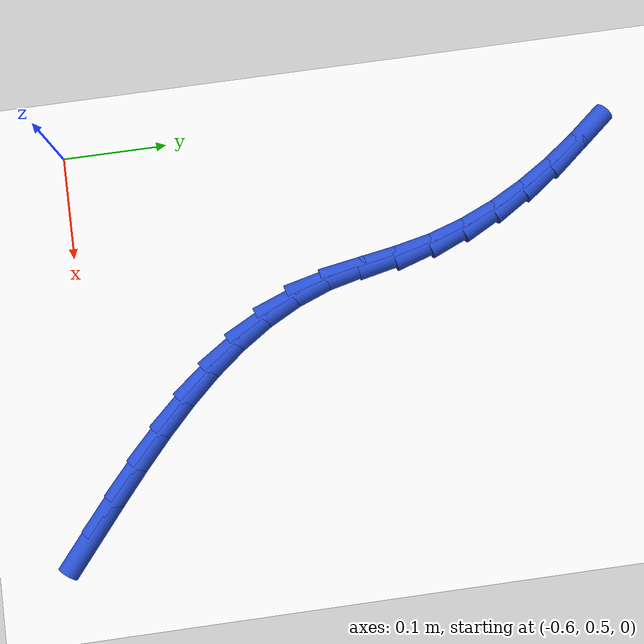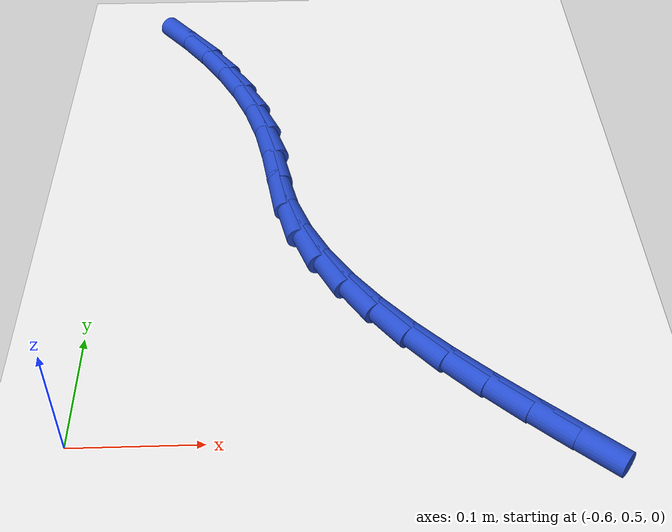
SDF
<sdf version="1.6">
 <world name="default">
  <model name="ground_plane">
   <static>1</static>
   <link name="link">
    <collision name="collision">
     <geometry><plane><normal>0 0 1</normal><size>100 100</size></plane></geometry>
     <surface><friction><ode><mu>100</mu><mu2>50</mu2></ode></friction></surface>
    </collision>
    <visual name="visual">
     <cast_shadows>0</cast_shadows>
     <geometry><plane><normal>0 0 1</normal><size>100 100</size></plane></geometry>
     <material>
      <script><uri>file://media/materials/scripts/gazebo.material</uri><name>Gazebo/WhiteGlow</name></script>
     </material>
    </visual>
   </link>
  </model>
  <model name="line">
   <link name="link_16">
    <pose>-0.2386633645860762 0.49262735201402774 0.01 0 1.57 -0.6903463337132321</pose>
    <collision name="collision">
     <geometry><cylinder><radius>0.01</radius><length>0.08</length></cylinder></geometry>
    </collision>
    <visual name="visual">
     <material>
      <script><name>Gazebo/Blue</name><uri>file://media/materials/scripts/gazebo.material</uri></script>
     </material>
     <geometry><cylinder><radius>0.01</radius><length>0.08</length></cylinder></geometry>
    </visual>
   </link>
   <link name="link_17">
    <pose>-0.2678235892629014 0.5167113216503956 0.01 0 1.57 -0.7042195649220782</pose>
    <collision name="collision">
     <geometry><cylinder><radius>0.01</radius><length>0.08</length></cylinder></geometry>
    </collision>
    <visual name="visual">
     <material>
      <script><name>Gazebo/Blue</name><uri>file://media/materials/scripts/gazebo.material</uri></script>
     </material>
     <geometry><cylinder><radius>0.01</radius><length>0.08</length></cylinder></geometry>
    </visual>
   </link>
   <link name="link_18">
    <pose>-0.29645272562324876 0.5410325541403679 0.01 0 1.57 -0.7307933267280785</pose>
    <collision name="collision">
     <geometry><cylinder><radius>0.01</radius><length>0.08</length></cylinder></geometry>
    </collision>
    <visual name="visual">
     <material>
      <script><name>Gazebo/Blue</name><uri>file://media/materials/scripts/gazebo.material</uri></script>
     </material>
     <geometry><cylinder><radius>0.01</radius><length>0.08</length></cylinder></geometry>
    </visual>
   </link>
   <link name="link_19">
    <pose>-0.32409774261645763 0.5658120885107256 0.01 0 1.57 -0.770902594090019</pose>
    <collision name="collision">
     <geometry><cylinder><radius>0.01</radius><length>0.08</length></cylinder></geometry>
    </collision>
    <visual name="visual">
     <material>
      <script><name>Gazebo/Blue</name><uri>file://media/materials/scripts/gazebo.material</uri></script>
     </material>
     <geometry><cylinder><radius>0.01</radius><length>0.08</length></cylinder></geometry>
    </visual>
   </link>
   <link name="link_20">
    <pose>-0.35030560919186793 0.5912709637882504 0.01 0 1.57 -0.8256623684526592</pose>
    <collision name="collision">
     <geometry><cylinder><radius>0.01</radius><length>0.08</length></cylinder></geometry>
    </collision>
    <visual name="visual">
     <material>
      <script><name>Gazebo/Blue</name><uri>file://media/materials/scripts/gazebo.material</uri></script>
     </material>
     <geometry><cylinder><radius>0.01</radius><length>0.08</length></cylinder></geometry>
    </visual>
   </link>
   <link name="link_21">
    <pose>-0.37462329429881946 0.6176302189997235 0.01 0 1.57 -0.8962787909941068</pose>
    <collision name="collision">
     <geometry><cylinder><radius>0.01</radius><length>0.08</length></cylinder></geometry>
    </collision>
    <visual name="visual">
     <material>
      <script><name>Gazebo/Blue</name><uri>file://media/materials/scripts/gazebo.material</uri></script>
     </material>
     <geometry><cylinder><radius>0.01</radius><length>0.08</length></cylinder></geometry>
    </visual>
   </link>
   <link name="link_22">
    <pose>-0.39659776688665194 0.6451108931719263 0.01 0 1.57 -0.98368758642964</pose>
    <collision name="collision">
     <geometry><cylinder><radius>0.01</radius><length>0.08</length></cylinder></geometry>
    </collision>
    <visual name="visual">
     <material>
      <script><name>Gazebo/Blue</name><uri>file://media/materials/scripts/gazebo.material</uri></script>
     </material>
     <geometry><cylinder><radius>0.01</radius><length>0.08</length></cylinder></geometry>
    </visual>
   </link>
   <link name="link_23">
    <pose>-0.41577599590470515 0.6739340253316402 0.01 0 1.57 -1.0879693595745252</pose>
    <collision name="collision">
     <geometry><cylinder><radius>0.01</radius><length>0.08</length></cylinder></geometry>
    </collision>
    <visual name="visual">
     <material>
      <script><name>Gazebo/Blue</name><uri>file://media/materials/scripts/gazebo.material</uri></script>
     </material>
     <geometry><cylinder><radius>0.01</radius><length>0.08</length></cylinder></geometry>
    </visual>
   </link>
   <link name="link_24">
    <pose>-0.4317049503023187 0.7043206545056464 0.01 0 1.57 -1.2076056975408678</pose>
    <collision name="collision">
     <geometry><cylinder><radius>0.01</radius><length>0.08</length></cylinder></geometry>
    </collision>
    <visual name="visual">
     <material>
      <script><name>Gazebo/Blue</name><uri>file://media/materials/scripts/gazebo.material</uri></script>
     </material>
     <geometry><cylinder><radius>0.01</radius><length>0.08</length></cylinder></geometry>
    </visual>
   </link>
   <link name="link_25">
    <pose>-0.4439315990288326 0.7364918197207269 0.01 0 1.57 -1.3362297150377422</pose>
    <collision name="collision">
     <geometry><cylinder><radius>0.01</radius><length>0.08</length></cylinder></geometry>
    </collision>
    <visual name="visual">
     <material>
      <script><name>Gazebo/Blue</name><uri>file://media/materials/scripts/gazebo.material</uri></script>
     </material>
     <geometry><cylinder><radius>0.01</radius><length>0.08</length></cylinder></geometry>
    </visual>
   </link>
   <link name="link_26">
    <pose>-0.452088937798595 0.7706278690755644 0.01 0 1.57 -1.4055876978040331</pose>
    <collision name="collision">
     <geometry><cylinder><radius>0.01</radius><length>0.08</length></cylinder></geometry>
    </collision>
    <visual name="visual">
     <material>
      <script><name>Gazebo/Blue</name><uri>file://media/materials/scripts/gazebo.material</uri></script>
     </material>
     <geometry><cylinder><radius>0.01</radius><length>0.08</length></cylinder></geometry>
    </visual>
   </link>
   <link name="link_27">
    <pose>-0.45796787422412355 0.8058884516122022 0.01 0 1.57 -1.3576633662700424</pose>
    <collision name="collision">
     <geometry><cylinder><radius>0.01</radius><length>0.08</length></cylinder></geometry>
    </collision>
    <visual name="visual">
     <material>
      <script><name>Gazebo/Blue</name><uri>file://media/materials/scripts/gazebo.material</uri></script>
     </material>
     <geometry><cylinder><radius>0.01</radius><length>0.08</length></cylinder></geometry>
    </visual>
   </link>
   <link name="link_28">
    <pose>-0.4654466397236207 0.8404451829258839 0.01 0 1.57 -1.2599925563201273</pose>
    <collision name="collision">
     <geometry><cylinder><radius>0.01</radius><length>0.08</length></cylinder></geometry>
    </collision>
    <visual name="visual">
     <material>
      <script><name>Gazebo/Blue</name><uri>file://media/materials/scripts/gazebo.material</uri></script>
     </material>
     <geometry><cylinder><radius>0.01</radius><length>0.08</length></cylinder></geometry>
    </visual>
   </link>
   <link name="link_29">
    <pose>-0.4760827379401297 0.8735573726928375 0.01 0 1.57 -1.1668296043280926</pose>
    <collision name="collision">
     <geometry><cylinder><radius>0.01</radius><length>0.08</length></cylinder></geometry>
    </collision>
    <visual name="visual">
     <material>
      <script><name>Gazebo/Blue</name><uri>file://media/materials/scripts/gazebo.material</uri></script>
     </material>
     <geometry><cylinder><radius>0.01</radius><length>0.08</length></cylinder></geometry>
    </visual>
   </link>
   <link name="link_30">
    <pose>-0.4896590019854619 0.9053164324322291 0.01 0 1.57 -1.0812638315535197</pose>
    <collision name="collision">
     <geometry><cylinder><radius>0.01</radius><length>0.08</length></cylinder></geometry>
    </collision>
    <visual name="visual">
     <material>
      <script><name>Gazebo/Blue</name><uri>file://media/materials/scripts/gazebo.material</uri></script>
     </material>
     <geometry><cylinder><radius>0.01</radius><length>0.08</length></cylinder></geometry>
    </visual>
   </link>
   <link name="link_31">
    <pose>-0.5059177371899706 0.9358327761997773 0.01 0 1.57 -1.0044408117792067</pose>
    <collision name="collision">
     <geometry><cylinder><radius>0.01</radius><length>0.08</length></cylinder></geometry>
    </collision>
    <visual name="visual">
     <material>
      <script><name>Gazebo/Blue</name><uri>file://media/materials/scripts/gazebo.material</uri></script>
     </material>
     <geometry><cylinder><radius>0.01</radius><length>0.08</length></cylinder></geometry>
    </visual>
   </link>
   <link name="link_32">
    <pose>-0.5246012488840094 0.9652168180512024 0.01 0 1.57 -0.9368635857762895</pose>
    <collision name="collision">
     <geometry><cylinder><radius>0.01</radius><length>0.08</length></cylinder></geometry>
    </collision>
    <visual name="visual">
     <material>
      <script><name>Gazebo/Blue</name><uri>file://media/materials/scripts/gazebo.material</uri></script>
     </material>
     <geometry><cylinder><radius>0.01</radius><length>0.08</length></cylinder></geometry>
    </visual>
   </link>
   <link name="link_33">
    <pose>-0.5454518423979314 0.9935789720422238 0.01 0 1.57 -0.8785481963484082</pose>
    <collision name="collision">
     <geometry><cylinder><radius>0.01</radius><length>0.08</length></cylinder></geometry>
    </collision>
    <visual name="visual">
     <material>
      <script><name>Gazebo/Blue</name><uri>file://media/materials/scripts/gazebo.material</uri></script>
     </material>
     <geometry><cylinder><radius>0.01</radius><length>0.08</length></cylinder></geometry>
    </visual>
   </link>
  </model>
 </world>
</sdf>
